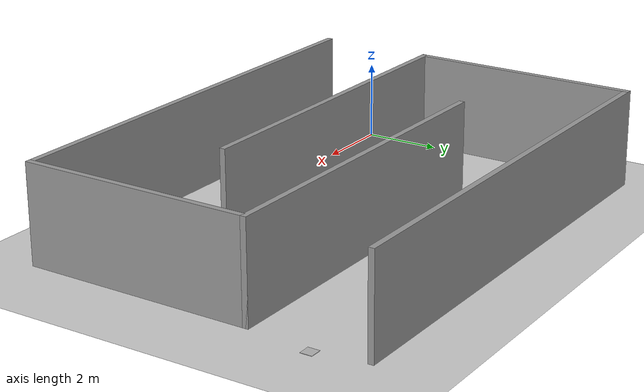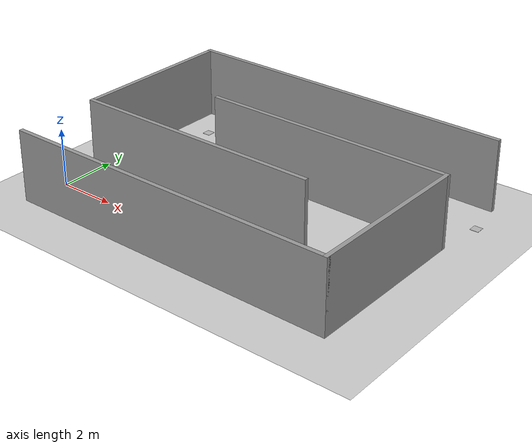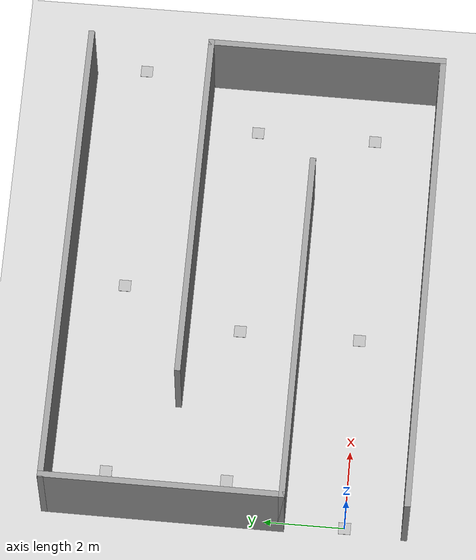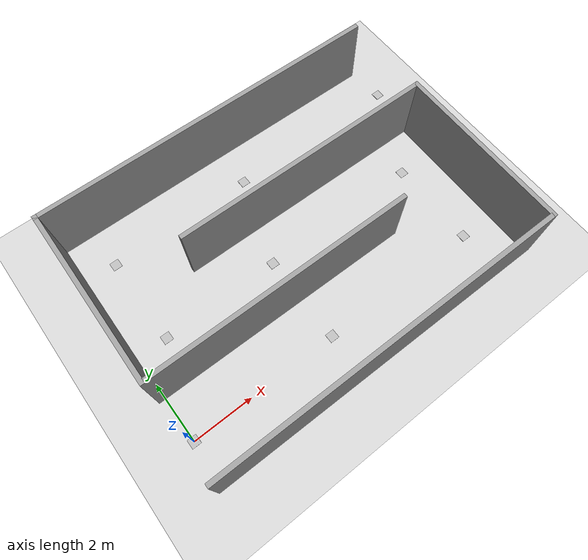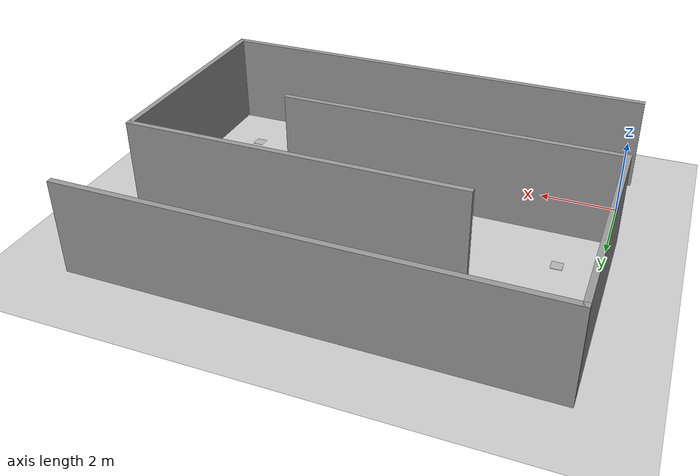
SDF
<sdf version="1.7">
 <world name="default">
  <light name="sun" type="directional">
   <pose>0 0 10 0 -0 0</pose>
   <diffuse>0.8 0.8 0.8 1</diffuse>
   <specular>0.2 0.2 0.2 1</specular>
   <attenuation>
    <range>1000</range>
    <constant>0.9</constant>
    <linear>0.01</linear>
    <quadratic>0.001</quadratic>
   </attenuation>
   <direction>-0.5 0.1 -0.9</direction>
   <spot><inner_angle>0</inner_angle><outer_angle>0</outer_angle><falloff>0</falloff></spot>
  </light>
  <model name="ground_plane">
   <static>1</static>
   <link name="link">
    <collision name="collision">
     <geometry><plane><normal>0 0 1</normal><size>100 100</size></plane></geometry>
     <surface>
      <contact><collide_bitmask>65535</collide_bitmask></contact>
      <friction><ode><mu>100</mu><mu2>50</mu2></ode></friction>
     </surface>
    </collision>
    <visual name="visual">
     <cast_shadows>0</cast_shadows>
     <geometry><plane><normal>0 0 1</normal><size>100 100</size></plane></geometry>
     <material>
      <script><uri>file://media/materials/scripts/gazebo.material</uri><name>Gazebo/Grey</name></script>
     </material>
    </visual>
   </link>
  </model>
  <physics name="default_physics" default="0" type="ode">
   <ode>
    <solver>
     <type>quick</type>
     <iters>10</iters>
     <sor>1.3</sor>
     <use_dynamic_moi_rescaling>0</use_dynamic_moi_rescaling>
    </solver>
    <constraints>
     <cfm>0</cfm>
     <erp>0.2</erp>
     <contact_max_correcting_vel>100</contact_max_correcting_vel>
     <contact_surface_layer>0.001</contact_surface_layer>
    </constraints>
   </ode>
   <max_step_size>0.004</max_step_size>
   <real_time_factor>1</real_time_factor>
   <real_time_update_rate>250</real_time_update_rate>
  </physics>
  <gravity>0 0 -9.8066</gravity>
  <magnetic_field>6e-06 2.3e-05 -4.2e-05</magnetic_field>
  <atmosphere type="adiabatic"/>
  <scene><ambient>0.4 0.4 0.4 1</ambient><background>0.7 0.7 0.7 1</background><shadows>1</shadows></scene>
  <spherical_coordinates>
   <surface_model>EARTH_WGS84</surface_model>
   <latitude_deg>0</latitude_deg>
   <longitude_deg>0</longitude_deg>
   <elevation>0</elevation>
   <heading_deg>0</heading_deg>
  </spherical_coordinates>
  <model name="maze">
   <pose>5.81778 2.92507 0 0 -0 1.56387</pose>
   <link name="Wall_2">
    <collision name="Wall_2_Collision">
     <geometry><box><size>12 0.15 2.5</size></box></geometry>
     <pose>0 0 1.25 0 -0 0</pose>
    </collision>
    <visual name="Wall_2_Visual">
     <pose>0 0 1.25 0 -0 0</pose>
     <geometry><box><size>12 0.15 2.5</size></box></geometry>
     <material>
      <script><uri>file://media/materials/scripts/gazebo.material</uri><name>Gazebo/Grey</name></script>
      <ambient>1 1 1 1</ambient>
     </material>
     <meta><layer>0</layer></meta>
    </visual>
    <pose>-4.44243 -0.017881 0 0 -0 -1.5708</pose>
   </link>
   <link name="Wall_3">
    <collision name="Wall_3_Collision">
     <geometry><box><size>6 0.15 2.5</size></box></geometry>
     <pose>0 0 1.25 0 -0 0</pose>
    </collision>
    <visual name="Wall_3_Visual">
     <pose>0 0 1.25 0 -0 0</pose>
     <geometry><box><size>6 0.15 2.5</size></box></geometry>
     <material>
      <script><uri>file://media/materials/scripts/gazebo.material</uri><name>Gazebo/Grey</name></script>
      <ambient>1 1 1 1</ambient>
     </material>
     <meta><layer>0</layer></meta>
    </visual>
    <pose>-1.51743 -5.94288 0 0 -0 0</pose>
   </link>
   <link name="Wall_4">
    <collision name="Wall_4_Collision">
     <geometry><box><size>9 0.15 2.5</size></box></geometry>
     <pose>0 0 1.25 0 -0 0</pose>
    </collision>
    <visual name="Wall_4_Visual">
     <pose>0 0 1.25 0 -0 0</pose>
     <geometry><box><size>9 0.15 2.5</size></box></geometry>
     <material>
      <script><uri>file://media/materials/scripts/gazebo.material</uri><name>Gazebo/Grey</name></script>
      <ambient>1 1 1 1</ambient>
     </material>
     <meta><layer>0</layer></meta>
    </visual>
    <pose>1.40757 -1.51788 0 0 -0 1.5708</pose>
   </link>
   <link name="Wall_6">
    <collision name="Wall_6_Collision">
     <geometry><box><size>9 0.15 2.5</size></box></geometry>
     <pose>0 0 1.25 0 -0 0</pose>
    </collision>
    <visual name="Wall_6_Visual">
     <pose>0 0 1.25 0 -0 0</pose>
     <geometry><box><size>9 0.15 2.5</size></box></geometry>
     <material>
      <script><uri>file://media/materials/scripts/gazebo.material</uri><name>Gazebo/Grey</name></script>
      <ambient>1 1 1 1</ambient>
     </material>
     <meta><layer>0</layer></meta>
    </visual>
    <pose>-1.40757 1.51788 0 0 -0 1.5708</pose>
   </link>
   <link name="Wall_7">
    <collision name="Wall_7_Collision">
     <geometry><box><size>6 0.15 2.5</size></box></geometry>
     <pose>0 0 1.25 0 -0 0</pose>
    </collision>
    <visual name="Wall_7_Visual">
     <pose>0 0 1.25 0 -0 0</pose>
     <geometry><box><size>6 0.15 2.5</size></box></geometry>
     <material>
      <script><uri>file://media/materials/scripts/gazebo.material</uri><name>Gazebo/Grey</name></script>
      <ambient>1 1 1 1</ambient>
     </material>
     <meta><layer>0</layer></meta>
    </visual>
    <pose>1.51743 5.94288 0 0 -0 0</pose>
   </link>
   <link name="Wall_8">
    <collision name="Wall_8_Collision">
     <geometry><box><size>12 0.15 2.5</size></box></geometry>
     <pose>0 0 1.25 0 -0 0</pose>
    </collision>
    <visual name="Wall_8_Visual">
     <pose>0 0 1.25 0 -0 0</pose>
     <geometry><box><size>12 0.15 2.5</size></box></geometry>
     <material>
      <script><uri>file://media/materials/scripts/gazebo.material</uri><name>Gazebo/Grey</name></script>
      <ambient>1 1 1 1</ambient>
     </material>
     <meta><layer>0</layer></meta>
    </visual>
    <pose>4.44243 0.017881 0 0 -0 -1.5708</pose>
   </link>
   <static>1</static>
  </model>
  <model name="ApriltagID0">
   <static>1</static>
   <link name="link_1">
    <inertial>
     <mass>0.1</mass>
     <inertia>
      <ixx>0.0166667</ixx>
      <ixy>0</ixy>
      <ixz>0</ixz>
      <iyy>0.0166667</iyy>
      <iyz>0</iyz>
      <izz>0.0166667</izz>
     </inertia>
    </inertial>
    <visual name="visual">
     <geometry><box><size>0.01 0.3 0.3</size></box></geometry>
     <material>
      <lighting>0</lighting>
      <script><uri>models://media/materials/scripts/Apriltag.material</uri><name>Apriltag/id0</name></script>
      <shader type="vertex"><normal_map>__default__</normal_map></shader>
      <ambient>0.3 0.3 0.3 1</ambient>
      <diffuse>0.7 0.7 0.7 1</diffuse>
      <specular>0.01 0.01 0.01 1</specular>
      <emissive>0 0 0 1</emissive>
     </material>
    </visual>
    <collision name="collision">
     <geometry><box><size>0.01 0.3 0.3</size></box></geometry>
     <surface>
      <friction>
       <ode><mu>1</mu><mu2>1</mu2><fdir1>0 0 0</fdir1><slip1>0</slip1><slip2>0</slip2></ode>
       <torsional>
        <coefficient>1</coefficient>
        <patch_radius>0</patch_radius>
        <surface_radius>0</surface_radius>
        <use_patch_radius>1</use_patch_radius>
        <ode><slip>0</slip></ode>
       </torsional>
      </friction>
      <bounce><restitution_coefficient>0</restitution_coefficient><threshold>1e+06</threshold></bounce>
      <contact>
       <collide_without_contact>0</collide_without_contact>
       <collide_without_contact_bitmask>1</collide_without_contact_bitmask>
       <collide_bitmask>1</collide_bitmask>
       <ode>
        <soft_cfm>0</soft_cfm>
        <soft_erp>0.2</soft_erp>
        <kp>1e+13</kp>
        <kd>1</kd>
        <max_vel>0.01</max_vel>
        <min_depth>0</min_depth>
       </ode>
       <bullet>
        <split_impulse>1</split_impulse>
        <split_impulse_penetration_threshold>-0.01</split_impulse_penetration_threshold>
        <soft_cfm>0</soft_cfm>
        <soft_erp>0.2</soft_erp>
        <kp>1e+13</kp>
        <kd>1</kd>
       </bullet>
      </contact>
     </surface>
    </collision>
   </link>
   <static>0</static>
   <pose>0 0 0 0 1.57 0</pose>
  </model>
  <model name="ApriltagID1">
   <static>1</static>
   <link name="link_1">
    <inertial>
     <mass>0.1</mass>
     <inertia>
      <ixx>0.0166667</ixx>
      <ixy>0</ixy>
      <ixz>0</ixz>
      <iyy>0.0166667</iyy>
      <iyz>0</iyz>
      <izz>0.0166667</izz>
     </inertia>
    </inertial>
    <visual name="visual">
     <geometry><box><size>0.01 0.3 0.3</size></box></geometry>
     <material>
      <lighting>0</lighting>
      <script><uri>models://media/materials/scripts/Apriltag.material</uri><name>Apriltag/id1</name></script>
      <shader type="vertex"><normal_map>__default__</normal_map></shader>
      <ambient>0.3 0.3 0.3 1</ambient>
      <diffuse>0.7 0.7 0.7 1</diffuse>
      <specular>0.01 0.01 0.01 1</specular>
      <emissive>0 0 0 1</emissive>
     </material>
    </visual>
    <collision name="collision">
     <geometry><box><size>0.01 0.3 0.3</size></box></geometry>
     <surface>
      <friction>
       <ode><mu>1</mu><mu2>1</mu2><fdir1>0 0 0</fdir1><slip1>0</slip1><slip2>0</slip2></ode>
       <torsional>
        <coefficient>1</coefficient>
        <patch_radius>0</patch_radius>
        <surface_radius>0</surface_radius>
        <use_patch_radius>1</use_patch_radius>
        <ode><slip>0</slip></ode>
       </torsional>
      </friction>
      <bounce><restitution_coefficient>0</restitution_coefficient><threshold>1e+06</threshold></bounce>
      <contact>
       <collide_without_contact>0</collide_without_contact>
       <collide_without_contact_bitmask>1</collide_without_contact_bitmask>
       <collide_bitmask>1</collide_bitmask>
       <ode>
        <soft_cfm>0</soft_cfm>
        <soft_erp>0.2</soft_erp>
        <kp>1e+13</kp>
        <kd>1</kd>
        <max_vel>0.01</max_vel>
        <min_depth>0</min_depth>
       </ode>
       <bullet>
        <split_impulse>1</split_impulse>
        <split_impulse_penetration_threshold>-0.01</split_impulse_penetration_threshold>
        <soft_cfm>0</soft_cfm>
        <soft_erp>0.2</soft_erp>
        <kp>1e+13</kp>
        <kd>1</kd>
       </bullet>
      </contact>
     </surface>
    </collision>
   </link>
   <static>0</static>
   <pose>5 0 0 0 1.57 0</pose>
  </model>
  <model name="ApriltagID10">
   <static>1</static>
   <link name="link_1">
    <inertial>
     <mass>0.1</mass>
     <inertia>
      <ixx>0.0166667</ixx>
      <ixy>0</ixy>
      <ixz>0</ixz>
      <iyy>0.0166667</iyy>
      <iyz>0</iyz>
      <izz>0.0166667</izz>
     </inertia>
    </inertial>
    <visual name="visual">
     <geometry><box><size>0.01 0.3 0.3</size></box></geometry>
     <material>
      <lighting>0</lighting>
      <script><uri>models://media/materials/scripts/Apriltag.material</uri><name>Apriltag/id10</name></script>
      <shader type="vertex"><normal_map>__default__</normal_map></shader>
      <ambient>0.3 0.3 0.3 1</ambient>
      <diffuse>0.7 0.7 0.7 1</diffuse>
      <specular>0.01 0.01 0.01 1</specular>
      <emissive>0 0 0 1</emissive>
     </material>
    </visual>
    <collision name="collision">
     <geometry><box><size>0.01 0.3 0.3</size></box></geometry>
     <surface>
      <friction>
       <ode><mu>1</mu><mu2>1</mu2><fdir1>0 0 0</fdir1><slip1>0</slip1><slip2>0</slip2></ode>
       <torsional>
        <coefficient>1</coefficient>
        <patch_radius>0</patch_radius>
        <surface_radius>0</surface_radius>
        <use_patch_radius>1</use_patch_radius>
        <ode><slip>0</slip></ode>
       </torsional>
      </friction>
      <bounce><restitution_coefficient>0</restitution_coefficient><threshold>1e+06</threshold></bounce>
      <contact>
       <collide_without_contact>0</collide_without_contact>
       <collide_without_contact_bitmask>1</collide_without_contact_bitmask>
       <collide_bitmask>1</collide_bitmask>
       <ode>
        <soft_cfm>0</soft_cfm>
        <soft_erp>0.2</soft_erp>
        <kp>1e+13</kp>
        <kd>1</kd>
        <max_vel>0.01</max_vel>
        <min_depth>0</min_depth>
       </ode>
       <bullet>
        <split_impulse>1</split_impulse>
        <split_impulse_penetration_threshold>-0.01</split_impulse_penetration_threshold>
        <soft_cfm>0</soft_cfm>
        <soft_erp>0.2</soft_erp>
        <kp>1e+13</kp>
        <kd>1</kd>
       </bullet>
      </contact>
     </surface>
    </collision>
   </link>
   <static>0</static>
   <pose>12 6 0 0 1.57 0</pose>
  </model>
  <model name="ApriltagID2">
   <static>1</static>
   <link name="link_1">
    <inertial>
     <mass>0.1</mass>
     <inertia>
      <ixx>0.0166667</ixx>
      <ixy>0</ixy>
      <ixz>0</ixz>
      <iyy>0.0166667</iyy>
      <iyz>0</iyz>
      <izz>0.0166667</izz>
     </inertia>
    </inertial>
    <visual name="visual">
     <geometry><box><size>0.01 0.3 0.3</size></box></geometry>
     <material>
      <lighting>0</lighting>
      <script><uri>models://media/materials/scripts/Apriltag.material</uri><name>Apriltag/id2</name></script>
      <shader type="vertex"><normal_map>__default__</normal_map></shader>
      <ambient>0.3 0.3 0.3 1</ambient>
      <diffuse>0.7 0.7 0.7 1</diffuse>
      <specular>0.01 0.01 0.01 1</specular>
      <emissive>0 0 0 1</emissive>
     </material>
    </visual>
    <collision name="collision">
     <geometry><box><size>0.01 0.3 0.3</size></box></geometry>
     <surface>
      <friction>
       <ode><mu>1</mu><mu2>1</mu2><fdir1>0 0 0</fdir1><slip1>0</slip1><slip2>0</slip2></ode>
       <torsional>
        <coefficient>1</coefficient>
        <patch_radius>0</patch_radius>
        <surface_radius>0</surface_radius>
        <use_patch_radius>1</use_patch_radius>
        <ode><slip>0</slip></ode>
       </torsional>
      </friction>
      <bounce><restitution_coefficient>0</restitution_coefficient><threshold>1e+06</threshold></bounce>
      <contact>
       <collide_without_contact>0</collide_without_contact>
       <collide_without_contact_bitmask>1</collide_without_contact_bitmask>
       <collide_bitmask>1</collide_bitmask>
       <ode>
        <soft_cfm>0</soft_cfm>
        <soft_erp>0.2</soft_erp>
        <kp>1e+13</kp>
        <kd>1</kd>
        <max_vel>0.01</max_vel>
        <min_depth>0</min_depth>
       </ode>
       <bullet>
        <split_impulse>1</split_impulse>
        <split_impulse_penetration_threshold>-0.01</split_impulse_penetration_threshold>
        <soft_cfm>0</soft_cfm>
        <soft_erp>0.2</soft_erp>
        <kp>1e+13</kp>
        <kd>1</kd>
       </bullet>
      </contact>
     </surface>
    </collision>
   </link>
   <static>0</static>
   <pose>10.5 0 0 0 1.57 0</pose>
  </model>
  <model name="ApriltagID3">
   <static>1</static>
   <link name="link_1">
    <inertial>
     <mass>0.1</mass>
     <inertia>
      <ixx>0.0166667</ixx>
      <ixy>0</ixy>
      <ixz>0</ixz>
      <iyy>0.0166667</iyy>
      <iyz>0</iyz>
      <izz>0.0166667</izz>
     </inertia>
    </inertial>
    <visual name="visual">
     <geometry><box><size>0.01 0.3 0.3</size></box></geometry>
     <material>
      <lighting>0</lighting>
      <script><uri>models://media/materials/scripts/Apriltag.material</uri><name>Apriltag/id3</name></script>
      <shader type="vertex"><normal_map>__default__</normal_map></shader>
      <ambient>0.3 0.3 0.3 1</ambient>
      <diffuse>0.7 0.7 0.7 1</diffuse>
      <specular>0.01 0.01 0.01 1</specular>
      <emissive>0 0 0 1</emissive>
     </material>
    </visual>
    <collision name="collision">
     <geometry><box><size>0.01 0.3 0.3</size></box></geometry>
     <surface>
      <friction>
       <ode><mu>1</mu><mu2>1</mu2><fdir1>0 0 0</fdir1><slip1>0</slip1><slip2>0</slip2></ode>
       <torsional>
        <coefficient>1</coefficient>
        <patch_radius>0</patch_radius>
        <surface_radius>0</surface_radius>
        <use_patch_radius>1</use_patch_radius>
        <ode><slip>0</slip></ode>
       </torsional>
      </friction>
      <bounce><restitution_coefficient>0</restitution_coefficient><threshold>1e+06</threshold></bounce>
      <contact>
       <collide_without_contact>0</collide_without_contact>
       <collide_without_contact_bitmask>1</collide_without_contact_bitmask>
       <collide_bitmask>1</collide_bitmask>
       <ode>
        <soft_cfm>0</soft_cfm>
        <soft_erp>0.2</soft_erp>
        <kp>1e+13</kp>
        <kd>1</kd>
        <max_vel>0.01</max_vel>
        <min_depth>0</min_depth>
       </ode>
       <bullet>
        <split_impulse>1</split_impulse>
        <split_impulse_penetration_threshold>-0.01</split_impulse_penetration_threshold>
        <soft_cfm>0</soft_cfm>
        <soft_erp>0.2</soft_erp>
        <kp>1e+13</kp>
        <kd>1</kd>
       </bullet>
      </contact>
     </surface>
    </collision>
   </link>
   <static>0</static>
   <pose>10.5 3 0 0 1.57 0</pose>
  </model>
  <model name="ApriltagID4">
   <static>1</static>
   <link name="link_1">
    <inertial>
     <mass>0.1</mass>
     <inertia>
      <ixx>0.0166667</ixx>
      <ixy>0</ixy>
      <ixz>0</ixz>
      <iyy>0.0166667</iyy>
      <iyz>0</iyz>
      <izz>0.0166667</izz>
     </inertia>
    </inertial>
    <visual name="visual">
     <geometry><box><size>0.01 0.3 0.3</size></box></geometry>
     <material>
      <lighting>0</lighting>
      <script><uri>models://media/materials/scripts/Apriltag.material</uri><name>Apriltag/id4</name></script>
      <shader type="vertex"><normal_map>__default__</normal_map></shader>
      <ambient>0.3 0.3 0.3 1</ambient>
      <diffuse>0.7 0.7 0.7 1</diffuse>
      <specular>0.01 0.01 0.01 1</specular>
      <emissive>0 0 0 1</emissive>
     </material>
    </visual>
    <collision name="collision">
     <geometry><box><size>0.01 0.3 0.3</size></box></geometry>
     <surface>
      <friction>
       <ode><mu>1</mu><mu2>1</mu2><fdir1>0 0 0</fdir1><slip1>0</slip1><slip2>0</slip2></ode>
       <torsional>
        <coefficient>1</coefficient>
        <patch_radius>0</patch_radius>
        <surface_radius>0</surface_radius>
        <use_patch_radius>1</use_patch_radius>
        <ode><slip>0</slip></ode>
       </torsional>
      </friction>
      <bounce><restitution_coefficient>0</restitution_coefficient><threshold>1e+06</threshold></bounce>
      <contact>
       <collide_without_contact>0</collide_without_contact>
       <collide_without_contact_bitmask>1</collide_without_contact_bitmask>
       <collide_bitmask>1</collide_bitmask>
       <ode>
        <soft_cfm>0</soft_cfm>
        <soft_erp>0.2</soft_erp>
        <kp>1e+13</kp>
        <kd>1</kd>
        <max_vel>0.01</max_vel>
        <min_depth>0</min_depth>
       </ode>
       <bullet>
        <split_impulse>1</split_impulse>
        <split_impulse_penetration_threshold>-0.01</split_impulse_penetration_threshold>
        <soft_cfm>0</soft_cfm>
        <soft_erp>0.2</soft_erp>
        <kp>1e+13</kp>
        <kd>1</kd>
       </bullet>
      </contact>
     </surface>
    </collision>
   </link>
   <static>0</static>
   <pose>5 3 0 0 1.57 0</pose>
  </model>
  <model name="ApriltagID5">
   <static>1</static>
   <link name="link_1">
    <inertial>
     <mass>0.1</mass>
     <inertia>
      <ixx>0.0166667</ixx>
      <ixy>0</ixy>
      <ixz>0</ixz>
      <iyy>0.0166667</iyy>
      <iyz>0</iyz>
      <izz>0.0166667</izz>
     </inertia>
    </inertial>
    <visual name="visual">
     <geometry><box><size>0.01 0.3 0.3</size></box></geometry>
     <material>
      <lighting>0</lighting>
      <script><uri>models://media/materials/scripts/Apriltag.material</uri><name>Apriltag/id5</name></script>
      <shader type="vertex"><normal_map>__default__</normal_map></shader>
      <ambient>0.3 0.3 0.3 1</ambient>
      <diffuse>0.7 0.7 0.7 1</diffuse>
      <specular>0.01 0.01 0.01 1</specular>
      <emissive>0 0 0 1</emissive>
     </material>
    </visual>
    <collision name="collision">
     <geometry><box><size>0.01 0.3 0.3</size></box></geometry>
     <surface>
      <friction>
       <ode><mu>1</mu><mu2>1</mu2><fdir1>0 0 0</fdir1><slip1>0</slip1><slip2>0</slip2></ode>
       <torsional>
        <coefficient>1</coefficient>
        <patch_radius>0</patch_radius>
        <surface_radius>0</surface_radius>
        <use_patch_radius>1</use_patch_radius>
        <ode><slip>0</slip></ode>
       </torsional>
      </friction>
      <bounce><restitution_coefficient>0</restitution_coefficient><threshold>1e+06</threshold></bounce>
      <contact>
       <collide_without_contact>0</collide_without_contact>
       <collide_without_contact_bitmask>1</collide_without_contact_bitmask>
       <collide_bitmask>1</collide_bitmask>
       <ode>
        <soft_cfm>0</soft_cfm>
        <soft_erp>0.2</soft_erp>
        <kp>1e+13</kp>
        <kd>1</kd>
        <max_vel>0.01</max_vel>
        <min_depth>0</min_depth>
       </ode>
       <bullet>
        <split_impulse>1</split_impulse>
        <split_impulse_penetration_threshold>-0.01</split_impulse_penetration_threshold>
        <soft_cfm>0</soft_cfm>
        <soft_erp>0.2</soft_erp>
        <kp>1e+13</kp>
        <kd>1</kd>
       </bullet>
      </contact>
     </surface>
    </collision>
   </link>
   <static>0</static>
   <pose>1 3 0 0 1.57 0</pose>
  </model>
  <model name="ApriltagID6">
   <static>1</static>
   <link name="link_1">
    <inertial>
     <mass>0.1</mass>
     <inertia>
      <ixx>0.0166667</ixx>
      <ixy>0</ixy>
      <ixz>0</ixz>
      <iyy>0.0166667</iyy>
      <iyz>0</iyz>
      <izz>0.0166667</izz>
     </inertia>
    </inertial>
    <visual name="visual">
     <geometry><box><size>0.01 0.3 0.3</size></box></geometry>
     <material>
      <lighting>0</lighting>
      <script><uri>models://media/materials/scripts/Apriltag.material</uri><name>Apriltag/id6</name></script>
      <shader type="vertex"><normal_map>__default__</normal_map></shader>
      <ambient>0.3 0.3 0.3 1</ambient>
      <diffuse>0.7 0.7 0.7 1</diffuse>
      <specular>0.01 0.01 0.01 1</specular>
      <emissive>0 0 0 1</emissive>
     </material>
    </visual>
    <collision name="collision">
     <geometry><box><size>0.01 0.3 0.3</size></box></geometry>
     <surface>
      <friction>
       <ode><mu>1</mu><mu2>1</mu2><fdir1>0 0 0</fdir1><slip1>0</slip1><slip2>0</slip2></ode>
       <torsional>
        <coefficient>1</coefficient>
        <patch_radius>0</patch_radius>
        <surface_radius>0</surface_radius>
        <use_patch_radius>1</use_patch_radius>
        <ode><slip>0</slip></ode>
       </torsional>
      </friction>
      <bounce><restitution_coefficient>0</restitution_coefficient><threshold>1e+06</threshold></bounce>
      <contact>
       <collide_without_contact>0</collide_without_contact>
       <collide_without_contact_bitmask>1</collide_without_contact_bitmask>
       <collide_bitmask>1</collide_bitmask>
       <ode>
        <soft_cfm>0</soft_cfm>
        <soft_erp>0.2</soft_erp>
        <kp>1e+13</kp>
        <kd>1</kd>
        <max_vel>0.01</max_vel>
        <min_depth>0</min_depth>
       </ode>
       <bullet>
        <split_impulse>1</split_impulse>
        <split_impulse_penetration_threshold>-0.01</split_impulse_penetration_threshold>
        <soft_cfm>0</soft_cfm>
        <soft_erp>0.2</soft_erp>
        <kp>1e+13</kp>
        <kd>1</kd>
       </bullet>
      </contact>
     </surface>
    </collision>
   </link>
   <static>0</static>
   <pose>1 6 0 0 1.57 0</pose>
  </model>
  <model name="ApriltagID7">
   <static>1</static>
   <link name="link_1">
    <inertial>
     <mass>0.1</mass>
     <inertia>
      <ixx>0.0166667</ixx>
      <ixy>0</ixy>
      <ixz>0</ixz>
      <iyy>0.0166667</iyy>
      <iyz>0</iyz>
      <izz>0.0166667</izz>
     </inertia>
    </inertial>
    <visual name="visual">
     <geometry><box><size>0.01 0.3 0.3</size></box></geometry>
     <material>
      <lighting>0</lighting>
      <script><uri>models://media/materials/scripts/Apriltag.material</uri><name>Apriltag/id7</name></script>
      <shader type="vertex"><normal_map>__default__</normal_map></shader>
      <ambient>0.3 0.3 0.3 1</ambient>
      <diffuse>0.7 0.7 0.7 1</diffuse>
      <specular>0.01 0.01 0.01 1</specular>
      <emissive>0 0 0 1</emissive>
     </material>
    </visual>
    <collision name="collision">
     <geometry><box><size>0.01 0.3 0.3</size></box></geometry>
     <surface>
      <friction>
       <ode><mu>1</mu><mu2>1</mu2><fdir1>0 0 0</fdir1><slip1>0</slip1><slip2>0</slip2></ode>
       <torsional>
        <coefficient>1</coefficient>
        <patch_radius>0</patch_radius>
        <surface_radius>0</surface_radius>
        <use_patch_radius>1</use_patch_radius>
        <ode><slip>0</slip></ode>
       </torsional>
      </friction>
      <bounce><restitution_coefficient>0</restitution_coefficient><threshold>1e+06</threshold></bounce>
      <contact>
       <collide_without_contact>0</collide_without_contact>
       <collide_without_contact_bitmask>1</collide_without_contact_bitmask>
       <collide_bitmask>1</collide_bitmask>
       <ode>
        <soft_cfm>0</soft_cfm>
        <soft_erp>0.2</soft_erp>
        <kp>1e+13</kp>
        <kd>1</kd>
        <max_vel>0.01</max_vel>
        <min_depth>0</min_depth>
       </ode>
       <bullet>
        <split_impulse>1</split_impulse>
        <split_impulse_penetration_threshold>-0.01</split_impulse_penetration_threshold>
        <soft_cfm>0</soft_cfm>
        <soft_erp>0.2</soft_erp>
        <kp>1e+13</kp>
        <kd>1</kd>
       </bullet>
      </contact>
     </surface>
    </collision>
   </link>
   <static>0</static>
   <pose>6 6 0 0 1.57 0</pose>
  </model>
 </world>
</sdf>
